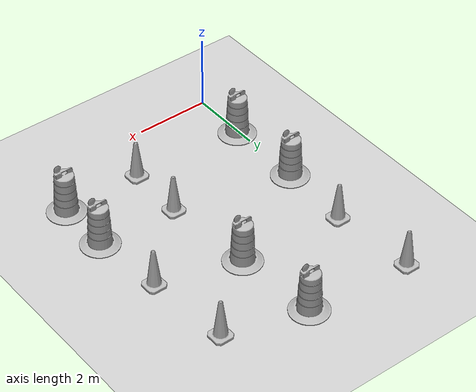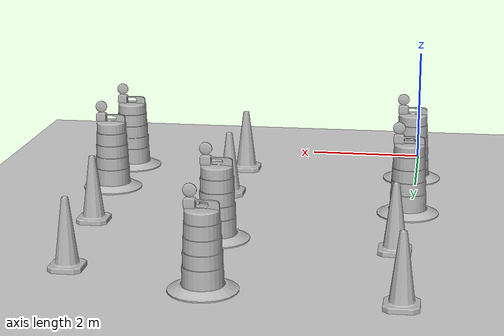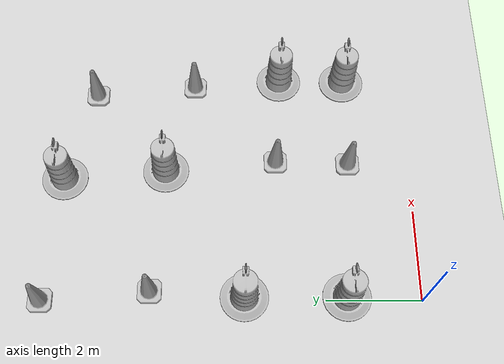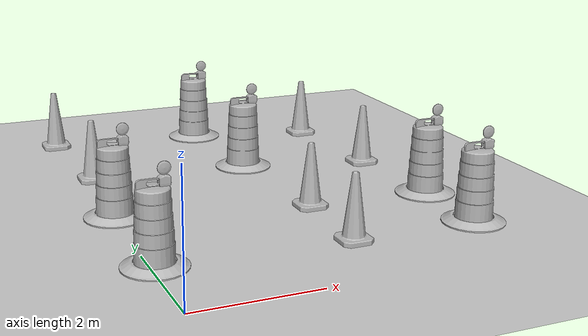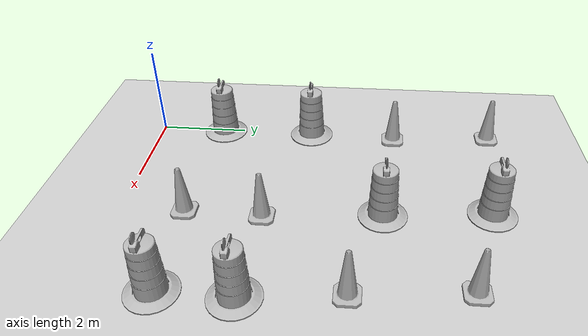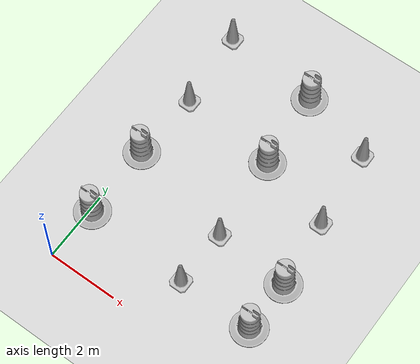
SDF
<sdf version="1.7">
 <world name="default">
  <light name="sun" type="directional">
   <pose>0 0 10 0 -0 0</pose>
   <diffuse>0.8 0.8 0.8 1</diffuse>
   <specular>0.2 0.2 0.2 1</specular>
   <attenuation>
    <range>1000</range>
    <constant>0.9</constant>
    <linear>0.01</linear>
    <quadratic>0.001</quadratic>
   </attenuation>
   <direction>-0.5 0.1 -0.9</direction>
   <spot><inner_angle>0</inner_angle><outer_angle>0</outer_angle><falloff>0</falloff></spot>
  </light>
  <model name="ground_plane">
   <static>1</static>
   <link name="link">
    <collision name="collision">
     <geometry><plane><normal>0 0 1</normal><size>100 100</size></plane></geometry>
     <surface><friction><ode><mu>100</mu><mu2>50</mu2></ode></friction></surface>
    </collision>
    <visual name="visual">
     <cast_shadows>0</cast_shadows>
     <geometry><plane><normal>0 0 1</normal><size>100 100</size></plane></geometry>
     <material>
      <script><uri>file://media/materials/scripts/gazebo.material</uri><name>Gazebo/Grey</name></script>
     </material>
    </visual>
   </link>
  </model>
  <gravity>0 0 -9.8</gravity>
  <magnetic_field>6e-06 2.3e-05 -4.2e-05</magnetic_field>
  <atmosphere type="adiabatic"/>
  <physics type="ode">
   <max_step_size>0.001</max_step_size>
   <real_time_factor>1</real_time_factor>
   <real_time_update_rate>1000</real_time_update_rate>
  </physics>
  <scene><ambient>0.4 0.4 0.4 1</ambient><background>0.7 0.7 0.7 1</background><shadows>1</shadows></scene>
  <audio><device>default</device></audio>
  <spherical_coordinates>
   <surface_model>EARTH_WGS84</surface_model>
   <latitude_deg>0</latitude_deg>
   <longitude_deg>0</longitude_deg>
   <elevation>0</elevation>
   <heading_deg>0</heading_deg>
  </spherical_coordinates>
  <model name="Construction Barrel">
   <link name="link">
    <inertial>
     <pose>0 0 0.4 0 -0 0</pose>
     <mass>500</mass>
     <inertia><ixx>51.2096</ixx><iyy>51.2096</iyy><izz>25</izz><ixy>0</ixy><ixz>0</ixz><iyz>0</iyz></inertia>
    </inertial>
    <collision name="collision">
     <geometry><mesh><uri>model://construction_barrel/meshes/construction_barrel.dae</uri></mesh></geometry>
    </collision>
    <visual name="visual">
     <geometry><mesh><uri>model://construction_barrel/meshes/construction_barrel.dae</uri></mesh></geometry>
    </visual>
   </link>
   <pose>0.078448 1.56114 1e-06 3e-06 2e-06 -2e-05</pose>
  </model>
  <model name="Construction Barrel_0">
   <link name="link">
    <inertial>
     <pose>0 0 0.4 0 -0 0</pose>
     <mass>500</mass>
     <inertia><ixx>51.2096</ixx><iyy>51.2096</iyy><izz>25</izz><ixy>0</ixy><ixz>0</ixz><iyz>0</iyz></inertia>
    </inertial>
    <collision name="collision">
     <geometry><mesh><uri>model://construction_barrel/meshes/construction_barrel.dae</uri></mesh></geometry>
    </collision>
    <visual name="visual">
     <geometry><mesh><uri>model://construction_barrel/meshes/construction_barrel.dae</uri></mesh></geometry>
    </visual>
   </link>
   <pose>0.065812 3.69464 -0 0 0 -1.8e-05</pose>
  </model>
  <model name="Construction Cone">
   <link name="link">
    <collision name="collision">
     <geometry>
      <mesh><scale>10 10 10</scale><uri>model://construction_cone/meshes/construction_cone.dae</uri></mesh>
     </geometry>
    </collision>
    <visual name="visual">
     <geometry>
      <mesh><scale>10 10 10</scale><uri>model://construction_cone/meshes/construction_cone.dae</uri></mesh>
     </geometry>
    </visual>
    <inertial>
     <inertia><ixx>1</ixx><ixy>0</ixy><ixz>0</ixz><iyy>1</iyy><iyz>0</iyz><izz>1</izz></inertia>
     <mass>1</mass>
    </inertial>
   </link>
   <pose>0.186958 5.66971 -0 0 -0 0</pose>
  </model>
  <model name="Construction Cone_0">
   <link name="link">
    <collision name="collision">
     <geometry>
      <mesh><scale>10 10 10</scale><uri>model://construction_cone/meshes/construction_cone.dae</uri></mesh>
     </geometry>
    </collision>
    <visual name="visual">
     <geometry>
      <mesh><scale>10 10 10</scale><uri>model://construction_cone/meshes/construction_cone.dae</uri></mesh>
     </geometry>
    </visual>
    <inertial>
     <inertia><ixx>1</ixx><ixy>0</ixy><ixz>0</ixz><iyy>1</iyy><iyz>0</iyz><izz>1</izz></inertia>
     <mass>1</mass>
    </inertial>
   </link>
   <pose>-0.010986 7.93291 -0 0 -1e-06 0</pose>
  </model>
  <model name="Construction Cone_1">
   <link name="link">
    <collision name="collision">
     <geometry>
      <mesh><scale>10 10 10</scale><uri>model://construction_cone/meshes/construction_cone.dae</uri></mesh>
     </geometry>
    </collision>
    <visual name="visual">
     <geometry>
      <mesh><scale>10 10 10</scale><uri>model://construction_cone/meshes/construction_cone.dae</uri></mesh>
     </geometry>
    </visual>
    <inertial>
     <inertia><ixx>1</ixx><ixy>0</ixy><ixz>0</ixz><iyy>1</iyy><iyz>0</iyz><izz>1</izz></inertia>
     <mass>1</mass>
    </inertial>
   </link>
   <pose>3.12657 1.36463 -1e-06 2e-06 2e-06 0</pose>
  </model>
  <model name="Construction Cone_2">
   <link name="link">
    <collision name="collision">
     <geometry>
      <mesh><scale>10 10 10</scale><uri>model://construction_cone/meshes/construction_cone.dae</uri></mesh>
     </geometry>
    </collision>
    <visual name="visual">
     <geometry>
      <mesh><scale>10 10 10</scale><uri>model://construction_cone/meshes/construction_cone.dae</uri></mesh>
     </geometry>
    </visual>
    <inertial>
     <inertia><ixx>1</ixx><ixy>0</ixy><ixz>0</ixz><iyy>1</iyy><iyz>0</iyz><izz>1</izz></inertia>
     <mass>1</mass>
    </inertial>
   </link>
   <pose>3.17083 2.9768 -5e-06 -4e-06 1e-06 0</pose>
  </model>
  <model name="Construction Barrel_1">
   <link name="link">
    <inertial>
     <pose>0 0 0.4 0 -0 0</pose>
     <mass>500</mass>
     <inertia><ixx>51.2096</ixx><iyy>51.2096</iyy><izz>25</izz><ixy>0</ixy><ixz>0</ixz><iyz>0</iyz></inertia>
    </inertial>
    <collision name="collision">
     <geometry><mesh><uri>model://construction_barrel/meshes/construction_barrel.dae</uri></mesh></geometry>
    </collision>
    <visual name="visual">
     <geometry><mesh><uri>model://construction_barrel/meshes/construction_barrel.dae</uri></mesh></geometry>
    </visual>
   </link>
   <pose>2.95377 5.42052 -1e-06 0 5e-06 -1e-05</pose>
  </model>
  <model name="Construction Barrel_2">
   <link name="link">
    <inertial>
     <pose>0 0 0.4 0 -0 0</pose>
     <mass>500</mass>
     <inertia><ixx>51.2096</ixx><iyy>51.2096</iyy><izz>25</izz><ixy>0</ixy><ixz>0</ixz><iyz>0</iyz></inertia>
    </inertial>
    <collision name="collision">
     <geometry><mesh><uri>model://construction_barrel/meshes/construction_barrel.dae</uri></mesh></geometry>
    </collision>
    <visual name="visual">
     <geometry><mesh><uri>model://construction_barrel/meshes/construction_barrel.dae</uri></mesh></geometry>
    </visual>
   </link>
   <pose>2.76427 7.65651 -2e-06 -0 7e-06 -8e-06</pose>
  </model>
  <model name="Construction Barrel_3">
   <link name="link">
    <inertial>
     <pose>0 0 0.4 0 -0 0</pose>
     <mass>500</mass>
     <inertia><ixx>51.2096</ixx><iyy>51.2096</iyy><izz>25</izz><ixy>0</ixy><ixz>0</ixz><iyz>0</iyz></inertia>
    </inertial>
    <collision name="collision">
     <geometry><mesh><uri>model://construction_barrel/meshes/construction_barrel.dae</uri></mesh></geometry>
    </collision>
    <visual name="visual">
     <geometry><mesh><uri>model://construction_barrel/meshes/construction_barrel.dae</uri></mesh></geometry>
    </visual>
   </link>
   <pose>5.26332 1.38139 -1e-06 3e-06 1e-05 -7e-06</pose>
  </model>
  <model name="Construction Barrel_4">
   <link name="link">
    <inertial>
     <pose>0 0 0.4 0 -0 0</pose>
     <mass>500</mass>
     <inertia><ixx>51.2096</ixx><iyy>51.2096</iyy><izz>25</izz><ixy>0</ixy><ixz>0</ixz><iyz>0</iyz></inertia>
    </inertial>
    <collision name="collision">
     <geometry><mesh><uri>model://construction_barrel/meshes/construction_barrel.dae</uri></mesh></geometry>
    </collision>
    <visual name="visual">
     <geometry><mesh><uri>model://construction_barrel/meshes/construction_barrel.dae</uri></mesh></geometry>
    </visual>
   </link>
   <pose>5.28131 2.85119 1e-06 2e-06 3e-06 -6e-06</pose>
  </model>
  <model name="Construction Cone_3">
   <link name="link">
    <collision name="collision">
     <geometry>
      <mesh><scale>10 10 10</scale><uri>model://construction_cone/meshes/construction_cone.dae</uri></mesh>
     </geometry>
    </collision>
    <visual name="visual">
     <geometry>
      <mesh><scale>10 10 10</scale><uri>model://construction_cone/meshes/construction_cone.dae</uri></mesh>
     </geometry>
    </visual>
    <inertial>
     <inertia><ixx>1</ixx><ixy>0</ixy><ixz>0</ixz><iyy>1</iyy><iyz>0</iyz><izz>1</izz></inertia>
     <mass>1</mass>
    </inertial>
   </link>
   <pose>5.10278 4.80115 -0 0 -0 0</pose>
  </model>
  <model name="Construction Cone_4">
   <link name="link">
    <collision name="collision">
     <geometry>
      <mesh><scale>10 10 10</scale><uri>model://construction_cone/meshes/construction_cone.dae</uri></mesh>
     </geometry>
    </collision>
    <visual name="visual">
     <geometry>
      <mesh><scale>10 10 10</scale><uri>model://construction_cone/meshes/construction_cone.dae</uri></mesh>
     </geometry>
    </visual>
    <inertial>
     <inertia><ixx>1</ixx><ixy>0</ixy><ixz>0</ixz><iyy>1</iyy><iyz>0</iyz><izz>1</izz></inertia>
     <mass>1</mass>
    </inertial>
   </link>
   <pose>4.89078 7.06257 -0 0 -1e-06 0</pose>
  </model>
 </world>
</sdf>
